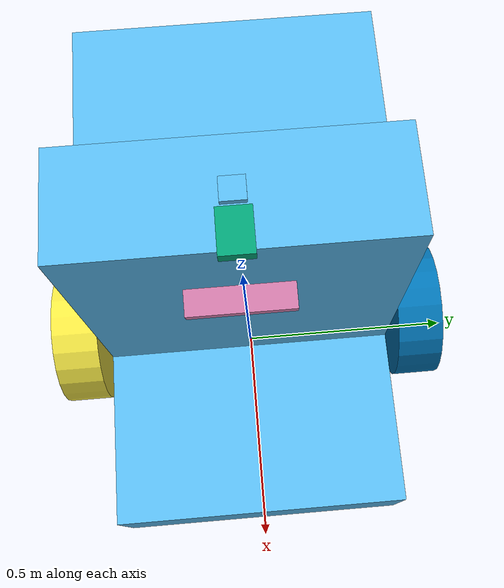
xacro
<?xml version="1.0"?>

<robot name="marvin" xmlns:xacro="http://www.ros.org/wiki/xacro">
    <!-- Args -->
    <xacro:arg name="base_frame_id" default="base_link"/>
    <xacro:arg name="imu_name" default="imu"/>
    <xacro:arg name="gps_name" default="gps"/>
    <xacro:arg name="zed_name" default="zed"/>

    <!-- Includes -->
    <xacro:include filename="$(find marvin_description)/urdf/constants.xacro"/>

    <!-- Base link -->
    <link name="$(arg base_frame_id)" />

    <!-- Chassis -->
    <xacro:include filename="$(find marvin_description)/urdf/chassis.xacro"/>

    <!-- Caster -->
    <xacro:include filename="$(find common_description)/urdf/wheel/caster.xacro"/>
    <xacro:caster name="caster" mass="${caster_mass}" radius="${caster_radius}">
        <origin xyz="${caster_x_offset} 0 ${caster_radius}" rpy="0 0 0" />
    </xacro:caster>

    <!-- Wheels -->
    <xacro:include filename="$(find common_description)/urdf/wheel/wheel.xacro"/>
    <xacro:wheel name="right_wheel" mass="${wheel_mass}" radius="${wheel_radius}" width="${wheel_width}">
        <origin xyz="0 -${track_width / 2} ${wheel_radius}" rpy="0 0 0" />
    </xacro:wheel>
    <xacro:wheel name="left_wheel" mass="${wheel_mass}" radius="${wheel_radius}" width="${wheel_width}">
        <origin xyz="0 ${track_width/2} ${wheel_radius}" rpy="0 0 0" />
    </xacro:wheel>

    <!-- Camera -->
    <xacro:include filename="$(find common_description)/urdf/sensor/zed2i.xacro" />
    <xacro:zed2i name="$(arg zed_name)" parent="$(arg base_frame_id)">
        <origin xyz="${camera_x_offset} ${camera_y_offset} ${camera_z_offset}" rpy="0 ${camera_pitch_offset} 0" />
    </xacro:zed2i>

    <!-- IMU -->
    <xacro:include filename="$(find common_description)/urdf/sensor/vn300.xacro" />
    <xacro:vn300 name="$(arg imu_name)" parent="$(arg base_frame_id)">
        <origin xyz="${imu_x_offset} ${imu_y_offset} ${imu_z_offset}" rpy="0 0 ${imu_yaw_offset}" />
    </xacro:vn300>

    <!-- GPS -->
    <xacro:include filename="$(find common_description)/urdf/sensor/ann_mb.xacro" />
    <xacro:ann_mb name="$(arg gps_name)" parent="$(arg base_frame_id)">
        <origin xyz="${gps_x_offset} ${gps_y_offset} ${gps_z_offset}" rpy="0 0 0" />
    </xacro:ann_mb>

    <!-- Rear Ultrasonic Sensors -->
    <xacro:include filename="$(find common_description)/urdf/sensor/ultrasonic.xacro" />
    <xacro:ultrasonic name="ultrasonic_rear_left" parent="$(arg base_frame_id)">
        <origin xyz="${ultrasonic_rear_x_offset} ${ultrasonic_rear_y_spacing} ${ultrasonic_rear_z_offset}" rpy="0 0 ${pi}" />
    </xacro:ultrasonic>
    <xacro:ultrasonic name="ultrasonic_rear_center" parent="$(arg base_frame_id)">
        <origin xyz="${ultrasonic_rear_x_offset} 0 ${ultrasonic_rear_z_offset}" rpy="0 0 ${pi}" />
    </xacro:ultrasonic>
    <xacro:ultrasonic name="ultrasonic_rear_right" parent="$(arg base_frame_id)">
        <origin xyz="${ultrasonic_rear_x_offset} ${-ultrasonic_rear_y_spacing} ${ultrasonic_rear_z_offset}" rpy="0 0 ${pi}" />
    </xacro:ultrasonic>
</robot>

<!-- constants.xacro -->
<robot xmlns:xacro="http://ros.org/wiki/xacro" name="constants">
    <!-- Chassis Constants -->
    <xacro:property name="chassis_length" value="${45.5*0.0254}" />
    <xacro:property name="chassis_width" value="${24*0.0254}" />
    <xacro:property name="chassis_height" value="${22*0.0254}" />
    <xacro:property name="chassis_z_offset" value="${4.375*0.0254}" />

    <xacro:property name="chassis_tower_length" value="${8*0.0254}" />
    <xacro:property name="chassis_tower_height" value="${31*0.0254}" />

    <xacro:property name="chassis_payload_length" value="${14.25*0.0254}" />
    <xacro:property name="chassis_payload_height" value="${8*0.0254}" />

    <xacro:property name="chassis_electrical_length" value="${15.25*0.0254}" />
    <xacro:property name="chassis_electrical_height" value="${22*0.0254}" />

    <xacro:property name="chassis_caster_length" value="${8*0.0254}" />
    <xacro:property name="chassis_caster_height" value="${2.25*0.0254}" />
    <xacro:property name="chassis_caster_ground_clearance" value="${2*0.0254}" />

    <!-- Wheel Constants -->
    <xacro:property name="wheel_radius" value="${6.1875*0.0254}" />
    <xacro:property name="wheel_width" value="${4*0.0254}" />
    <xacro:property name="wheel_mass" value="5" />
    <xacro:property name="track_width" value="${31*0.0254}" />

    <!-- Chassis Inertial Constants -->
    <xacro:property name="chassis_mass" value="29.9371" />
    <xacro:property name="com_x" value="${-4.0*0.0254}" />
    <xacro:property name="com_y" value="0.0" />
    <xacro:property name="com_z" value="${wheel_radius - chassis_z_offset}" />

    <!-- Caster Constants -->
    <xacro:property name="caster_x_offset" value="${-24.625*0.0254}" />
    <xacro:property name="caster_radius" value="${3.5*0.0254}" />
    <xacro:property name="caster_mass" value="0.1" />

    <!-- Camera Mount Constants -->
    <xacro:property name="camera_x_offset" value="${chassis_tower_length/2 + 2.66916*0.0254}"/>
    <xacro:property name="camera_y_offset" value="0.0"/>
    <xacro:property name="camera_z_offset" value="${chassis_z_offset + chassis_tower_height - 1.80395*0.0254}"/>
    <xacro:property name="camera_pitch_offset" value="${10 * 0.01745327777}"/>

    <!-- IMU Constants -->
    <xacro:property name="imu_x_offset" value="0.0"/>
    <xacro:property name="imu_y_offset" value="0.0"/>
    <xacro:property name="imu_z_offset" value="${chassis_z_offset + chassis_tower_height}"/>
    <xacro:property name="imu_yaw_offset" value="${-pi/2}"/>

    <!-- GPS Constants -->
    <xacro:property name="gps_x_offset" value="${3*0.0254}"/>
    <xacro:property name="gps_y_offset" value="0.0"/>
    <xacro:property name="gps_z_offset" value="${chassis_z_offset + chassis_tower_height}"/>

    <!-- Rear Ultrasonic Sensor Constants -->
    <xacro:property name="ultrasonic_rear_x_offset" value="${-(chassis_tower_length/2 + chassis_electrical_length + chassis_caster_length)}"/>
    <xacro:property name="ultrasonic_rear_y_spacing" value="${8*0.0254}"/>
    <xacro:property name="ultrasonic_rear_z_offset" value="${chassis_z_offset + 2*0.0254}"/>
</robot>

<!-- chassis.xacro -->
<robot xmlns:xacro="http://ros.org/wiki/xacro" name="chassis">
    <!-- Includes -->
    <xacro:include filename="$(find common_description)/urdf/physics/inertia.xacro"/>
    <xacro:include filename="$(find marvin_description)/urdf/constants.xacro"/>

    <!-- Chassis link -->
    <link name="chassis_link">
        <xacro:box_inertia mass="${chassis_mass}" length="${chassis_length}" width="${chassis_width}" height="${chassis_height}">
            <origin xyz="${com_x} ${com_y} ${com_z}" rpy="0 0 0" />
        </xacro:box_inertia>

        <visual> <!-- Chassis Tower -->
            <origin xyz="0 0 ${chassis_tower_height / 2}" rpy="0 0 0" />
            <geometry>
                <box size="${chassis_tower_length} ${chassis_width} ${chassis_tower_height}" />
            </geometry>
        </visual>

        <visual> <!-- Chassis Payload -->
            <origin xyz="${chassis_tower_length / 2 + chassis_payload_length / 2} 0 ${chassis_payload_height / 2}" rpy="0 0 0" />
            <geometry>
                <box size="${chassis_payload_length} ${chassis_width} ${chassis_payload_height}" />
            </geometry>
        </visual>

        <visual> <!-- Chassis Electrical -->
            <origin xyz="${-chassis_tower_length / 2 - chassis_electrical_length / 2} 0 ${chassis_electrical_height / 2}" rpy="0 0 0" />
            <geometry>
                <box size="${chassis_electrical_length} ${chassis_width} ${chassis_electrical_height}" />
            </geometry>
        </visual>

        <visual> <!-- Chassis Caster -->
            <origin xyz="${-chassis_tower_length / 2 - chassis_electrical_length - chassis_caster_length / 2}
                         0
                         ${chassis_caster_height / 2 + chassis_caster_ground_clearance}"
                         rpy="0 0 0" />
            <geometry>
                <box size="${chassis_caster_length} ${chassis_width} ${chassis_caster_height}" />
            </geometry>
        </visual>

        <collision>
            <origin xyz="${chassis_tower_length / 2 + chassis_payload_length - chassis_length / 2}
                         0
                         ${chassis_tower_height / 2}"
                    rpy="0 0 0" />
            <geometry>
                <box size="${chassis_length} ${chassis_width} ${chassis_tower_height}" />
            </geometry>
        </collision>
    </link>

    <joint name="chassis_joint" type="fixed">
        <origin xyz="0 0 ${chassis_z_offset}" rpy="0 0 0" />
        <parent link="$(arg base_frame_id)" />
        <child link="chassis_link" />
    </joint>
</robot>

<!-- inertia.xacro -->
<robot xmlns:xacro="http://ros.org/wiki/xacro" name="inertia">
    <!-- Brief: Inertial property of a constant density box -->
    <!-- Param mass: mass of the link -->
    <!-- Param length: length of the link -->
    <!-- Param width: width of the link -->
    <!-- Param height: height of the object -->
    <!-- Param origin: location of the inertia relative to the link's origin -->
    <xacro:macro name="box_inertia" params="mass length width height *origin">
        <inertial>
            <xacro:insert_block name="origin" />
            <mass value="${mass}"/>
            <inertia ixx="${(mass/12) * (height**2 + width**2)}" ixy="0.0" ixz="0.0"
                    iyy="${(mass/12) * (height**2 + length**2)}" iyz="0.0"
                    izz="${(mass/12) * (length**2 + width**2)}"/>
        </inertial>
    </xacro:macro>

    <!-- Brief: Inertial property of a constant density cylinder -->
    <!-- Param mass: mass of the link -->
    <!-- Param radius: radius of the link -->
    <!-- Param height: height of the link -->
    <!-- Param origin: location of the inertia relative to the link's origin -->
    <xacro:macro name="cylinder_inertia" params="mass radius height *origin">
        <inertial>
            <xacro:insert_block name="origin" />
            <mass value="${mass}"/>
            <inertia ixx="${(mass/12) * (3*radius**2 + height**2)}" ixy = "0" ixz = "0"
                    iyy="${(mass/2) * (radius**2)}" iyz = "0"
                    izz="${(mass/12) * (3*radius**2 + height**2)}"/>
        </inertial>
    </xacro:macro>

    <!-- Brief: Inertial property of a constant density sphere -->
    <!-- Param mass: mass of the link -->
    <!-- Param radius: radius of the link -->
    <!-- Param origin: location of the inertia relative to the link's origin -->
    <xacro:macro name="sphere_inertia" params="mass radius *origin">
        <inertial>
            <xacro:insert_block name="origin" />
            <mass value="${mass}"/>
            <inertia ixx="${(2/5) * mass * radius**2}" ixy="0.0" ixz="0.0"
                    iyy="${(2/5) * mass * radius**2}" iyz="0.0"
                    izz="${(2/5) * mass * radius**2}"/>
        </inertial>
    </xacro:macro>
</robot>

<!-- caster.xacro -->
<!-- Brief: A caster wheel with zero friction -->
<!-- Shape, Collision, Inertia: Sphere with relevant collision and constant inertia -->
<!-- Mounting Location: center of the sphere -->
<!-- Joint Type: fixed -->
<!-- Param name: the name of the caster -->
<!-- Param mass: mass of the caster -->
<!-- Param radius: radius of the caster -->
<!-- Param parent: name of the parent link, defaulted to base_link -->
<!-- Param joint_origin: location of the caster relative to parent link -->
<robot xmlns:xacro="http://ros.org/wiki/xacro" name="caster">
    <xacro:macro name="caster" params="name mass radius parent:=base_link *joint_origin">
        <!-- Includes -->
        <xacro:include filename="$(find common_description)/urdf/physics/inertia.xacro"/>

        <!-- Caster link -->
        <link name="${name}_link">
            <xacro:sphere_inertia mass="${mass}" radius="${radius}">
                <origin xyz="0 0 0" rpy="0 0 0" />
            </xacro:sphere_inertia>

            <visual>
                <origin xyz="0 0 0" rpy="0 0 0" />
                <geometry>
                    <sphere radius="${radius}" />
                </geometry>
            </visual>

            <collision>
                <origin xyz="0 0 0" rpy="0 0 0" />
                <geometry>
                    <sphere radius="${radius}"/>
                </geometry>
                <surface>
                    <friction>
                        <ode>
                            <mu>0.0</mu>
                            <mu2>0.0</mu2>
                        </ode>
                    </friction>
                </surface>
            </collision>
        </link>

        <joint name="${name}_joint" type="fixed">
            <xacro:insert_block name="joint_origin" />
            <parent link="${parent}" />
            <child link="${name}_link" />
        </joint>
    </xacro:macro>
</robot>

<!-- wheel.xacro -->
<!-- Brief: Powered robot wheel -->
<!-- Shape, Collision, Inertia: Cylinder with relevant collision and constant inertia -->
<!-- Mounting Location: Center of cylinder -->
<!-- Joint Type: continuous -->
<!-- Param name: the name of the wheel -->
<!-- Param mass: mass of the wheel -->
<!-- Param radius: radius of the wheel -->
<!-- Param width: width of the wheel -->
<!-- Param parent: name of the parent link, defaulted to base_link -->
<!-- Param joint_origin: location of the wheel relative to parent link -->
<robot xmlns:xacro="http://ros.org/wiki/xacro" name="wheel">
    <xacro:macro name="wheel" params="name mass radius width parent:=base_link *joint_origin">
        <!-- Includes -->
        <xacro:include filename="$(find common_description)/urdf/physics/inertia.xacro"/>

        <!-- Wheel link -->
        <link name="${name}_link">
            <xacro:cylinder_inertia mass="${mass}" radius="${radius}" height="${width}">
                <origin xyz="0 0 0" rpy="0 0 0" />
            </xacro:cylinder_inertia>

            <visual>
                <origin xyz="0 0 0" rpy="0 ${pi/2} ${pi/2}" />
                <geometry>
                    <cylinder radius="${radius}" length="${width}" />
                </geometry>
            </visual>

            <collision>
                <origin xyz="0 0 0" rpy="0 ${pi/2} ${pi/2}" />
                <geometry>
                    <cylinder radius="${radius}" length="${width}" />
                </geometry>
            </collision>
        </link>

        <joint name="${name}_joint" type="continuous">
            <xacro:insert_block name="joint_origin" />
            <parent link="${parent}" />
            <child link="${name}_link" />
            <axis xyz="0 1 0" rpy="0 0 0" />
            <limit effort="1000" velocity="1000"/>
            <dynamics damping="0.0001"/>
        </joint>
    </xacro:macro>
</robot>

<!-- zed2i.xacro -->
<!-- Brief: Stereolabs ZED 2i stereo depth camera -->
<!-- Dimensions: 175.3 x 30.3 x 43.1 mm -->
<!-- Mass: 230g -->
<!-- Mounting Location: Bottom center of the camera body -->
<!-- Joint Type: fixed -->
<!-- Param name: name of the camera. Topics will start with /{name} -->
<!-- Param parent: name of the parent link, defaulted to base_link -->
<!-- Param joint_origin: location of the camera relative to parent link -->
<robot xmlns:xacro="http://ros.org/wiki/xacro" name="zed2i">
    <xacro:macro name="zed2i" params="name parent:=base_link *joint_origin">
        <!-- Includes -->
        <xacro:include filename="$(find common_description)/urdf/physics/inertia.xacro"/>

        <!-- ZED 2i dimensions -->
        <xacro:property name="zed2i_mass" value="0.230"/>
        <xacro:property name="zed2i_length" value="0.04310"/>
        <xacro:property name="zed2i_width" value="0.17530"/>
        <xacro:property name="zed2i_height" value="0.03030"/>

        <!-- Base link -->
        <link name="${name}_base_link" />

        <joint name="${name}_base_joint" type="fixed">
            <xacro:insert_block name="joint_origin" />
            <parent link="${parent}" />
            <child link="${name}_base_link" />
        </joint>

        <!-- Camera link -->
        <link name="${name}_link">
            <xacro:box_inertia mass="${zed2i_mass}" length="${zed2i_length}" width="${zed2i_width}" height="${zed2i_height}">
                <origin xyz="0 0 0" rpy="0 0 0" />
            </xacro:box_inertia>

            <visual>
                <origin xyz="0 0 0" rpy="0 0 0"/>
                <geometry>
                    <box size="${zed2i_length} ${zed2i_width} ${zed2i_height}"/>
                </geometry>
            </visual>

            <collision>
                <origin xyz="0 0 0" rpy="0 0 0"/>
                <geometry>
                    <box size="${zed2i_length} ${zed2i_width} ${zed2i_height}"/>
                </geometry>
            </collision>
        </link>

        <joint name="${name}_joint" type="fixed">
            <origin xyz="0 0 ${zed2i_height/2}" rpy="0 0 0"/>
            <parent link="${name}_base_link" />
            <child link="${name}_link" />
        </joint>

        <!-- Optical link (ROS convention: Z forward, X right, Y down) -->
        <link name="${name}_optical_link" />

        <joint name="${name}_optical_joint" type="fixed">
            <origin xyz="0 0 0" rpy="${-pi/2} 0 ${-pi/2}"/>
            <parent link="${name}_link" />
            <child link="${name}_optical_link" />
        </joint>
    </xacro:macro>
</robot>

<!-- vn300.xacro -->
<!-- Brief: VectorNav VN-300 Rugged Dual GNSS/INS -->
<!-- Dimensions: 45 x 44 x 11 mm (length x width x height) -->
<!-- Mass: 30g -->
<!-- Mounting Location: Bottom center of housing -->
<!-- Joint Type: fixed -->
<!-- Note: GNSS antennas (ports A and B) connect to external antennas modeled separately -->
<!-- Param name: name of the sensor -->
<!-- Param parent: name of the parent link, defaulted to base_link -->
<!-- Param joint_origin: location of bottom center of housing relative to parent link -->
<robot xmlns:xacro="http://ros.org/wiki/xacro" name="vn300">
    <xacro:macro name="vn300" params="name parent:=base_link *joint_origin">
        <!-- Includes -->
        <xacro:include filename="$(find common_description)/urdf/physics/inertia.xacro"/>

        <!-- VN-300 Rugged dimensions -->
        <xacro:property name="vn300_mass" value="0.030"/>
        <xacro:property name="vn300_length" value="0.0450"/>
        <xacro:property name="vn300_width" value="0.0440"/>
        <xacro:property name="vn300_height" value="0.0110"/>

        <!-- Base link -->
        <link name="${name}_base_link" />

        <joint name="${name}_base_joint" type="fixed">
            <xacro:insert_block name="joint_origin" />
            <parent link="${parent}" />
            <child link="${name}_base_link" />
        </joint>

        <!-- IMU link -->
        <link name="${name}_link">
            <xacro:box_inertia mass="${vn300_mass}" length="${vn300_length}" width="${vn300_width}" height="${vn300_height}">
                <origin xyz="0 0 0" rpy="0 0 0" />
            </xacro:box_inertia>

            <visual>
                <origin xyz="0 0 0" rpy="0 0 0" />
                <geometry>
                    <box size="${vn300_length} ${vn300_width} ${vn300_height}" />
                </geometry>
            </visual>

            <collision>
                <origin xyz="0 0 0" rpy="0 0 0" />
                <geometry>
                    <box size="${vn300_length} ${vn300_width} ${vn300_height}" />
                </geometry>
            </collision>
        </link>

        <joint name="${name}_joint" type="fixed">
            <origin xyz="0 0 ${vn300_height / 2}" rpy="0 0 0" />
            <parent link="${name}_base_link" />
            <child link="${name}_link" />
        </joint>
    </xacro:macro>
</robot>

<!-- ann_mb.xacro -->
<!-- Brief: u-blox ANN-MB GNSS antenna -->
<!-- Dimensions: 82.0 x 60.0 x 22.5 mm (length x width x height) -->
<!-- Mass: 173g (including cable) -->
<!-- Mounting Location: ARP (Antenna Reference Point) at bottom center of housing -->
<!-- Phase Center Offset from ARP: L1 = 8.9mm up, L2 = 7.6mm up, horizontal < 5mm -->
<!-- Joint Type: fixed -->
<!-- Param name: name of the antenna -->
<!-- Param parent: name of the parent link, defaulted to base_link -->
<!-- Param joint_origin: location of ARP relative to parent link -->
<robot xmlns:xacro="http://ros.org/wiki/xacro" name="ann_mb">
    <xacro:macro name="ann_mb" params="name parent:=base_link *joint_origin">
        <!-- Includes -->
        <xacro:include filename="$(find common_description)/urdf/physics/inertia.xacro"/>

        <!-- ANN-MB dimensions -->
        <xacro:property name="ann_mb_mass" value="0.173"/>
        <xacro:property name="ann_mb_length" value="0.0820"/>
        <xacro:property name="ann_mb_width" value="0.0600"/>
        <xacro:property name="ann_mb_height" value="0.0225"/>
        <xacro:property name="ann_mb_phase_center_z" value="0.0089"/>

        <!-- Base link -->
        <link name="${name}_base_link">
            <xacro:box_inertia mass="${ann_mb_mass}" length="${ann_mb_length}" width="${ann_mb_width}" height="${ann_mb_height}">
                <origin xyz="0 0 ${ann_mb_height / 2}" rpy="0 0 0" />
            </xacro:box_inertia>

            <visual>
                <origin xyz="0 0 ${ann_mb_height / 2}" rpy="0 0 0" />
                <geometry>
                    <box size="${ann_mb_length} ${ann_mb_width} ${ann_mb_height}" />
                </geometry>
            </visual>

            <collision>
                <origin xyz="0 0 ${ann_mb_height / 2}" rpy="0 0 0" />
                <geometry>
                    <box size="${ann_mb_length} ${ann_mb_width} ${ann_mb_height}" />
                </geometry>
            </collision>
        </link>

        <joint name="${name}_base_joint" type="fixed">
            <xacro:insert_block name="joint_origin" />
            <parent link="${parent}" />
            <child link="${name}_base_link" />
        </joint>

        <!-- GPS link (L1 band phase center) -->
        <link name="${name}_link" />

        <joint name="${name}_joint" type="fixed">
            <origin xyz="0 0 ${ann_mb_phase_center_z}" rpy="0 0 0" />
            <parent link="${name}_base_link" />
            <child link="${name}_link" />
        </joint>
    </xacro:macro>
</robot>

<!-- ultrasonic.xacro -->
<!-- Brief: Generic ultrasonic proximity sensor -->
<!-- Dimensions: 45 x 20 x 15 mm (length x width x height), sensing axis along local +x -->
<!-- Mass: 9g -->
<!-- Mounting Location: Rear face of sensor body (attachment point to chassis wall) -->
<!-- Joint Type: fixed -->
<!-- Param name: name of the sensor -->
<!-- Param parent: name of the parent link, defaulted to base_link -->
<!-- Param joint_origin: location of sensor attachment face relative to parent link -->
<!--   Note: orient so that local +x points in the desired sensing direction -->
<robot xmlns:xacro="http://ros.org/wiki/xacro" name="ultrasonic">
    <xacro:macro name="ultrasonic" params="name parent:=base_link *joint_origin">
        <!-- Includes -->
        <xacro:include filename="$(find common_description)/urdf/physics/inertia.xacro"/>

        <!-- Ultrasonic sensor dimensions -->
        <xacro:property name="ultrasonic_mass" value="0.009"/>
        <xacro:property name="ultrasonic_length" value="0.045"/>
        <xacro:property name="ultrasonic_width" value="0.020"/>
        <xacro:property name="ultrasonic_height" value="0.015"/>

        <!-- Base link (geometry centered on body, attachment face at local x=0) -->
        <link name="${name}_base_link">
            <xacro:box_inertia mass="${ultrasonic_mass}" length="${ultrasonic_length}" width="${ultrasonic_width}" height="${ultrasonic_height}">
                <origin xyz="${ultrasonic_length / 2} 0 0" rpy="0 0 0" />
            </xacro:box_inertia>

            <visual>
                <origin xyz="${ultrasonic_length / 2} 0 0" rpy="0 0 0" />
                <geometry>
                    <box size="${ultrasonic_length} ${ultrasonic_width} ${ultrasonic_height}" />
                </geometry>
            </visual>

            <collision>
                <origin xyz="${ultrasonic_length / 2} 0 0" rpy="0 0 0" />
                <geometry>
                    <box size="${ultrasonic_length} ${ultrasonic_width} ${ultrasonic_height}" />
                </geometry>
            </collision>
        </link>

        <joint name="${name}_base_joint" type="fixed">
            <xacro:insert_block name="joint_origin" />
            <parent link="${parent}" />
            <child link="${name}_base_link" />
        </joint>

        <!-- Sensing link at transducer face (local x = ultrasonic_length, pointing in sensing direction) -->
        <link name="${name}_link" />

        <joint name="${name}_joint" type="fixed">
            <origin xyz="${ultrasonic_length} 0 0" rpy="0 0 0" />
            <parent link="${name}_base_link" />
            <child link="${name}_link" />
        </joint>
    </xacro:macro>
</robot>
